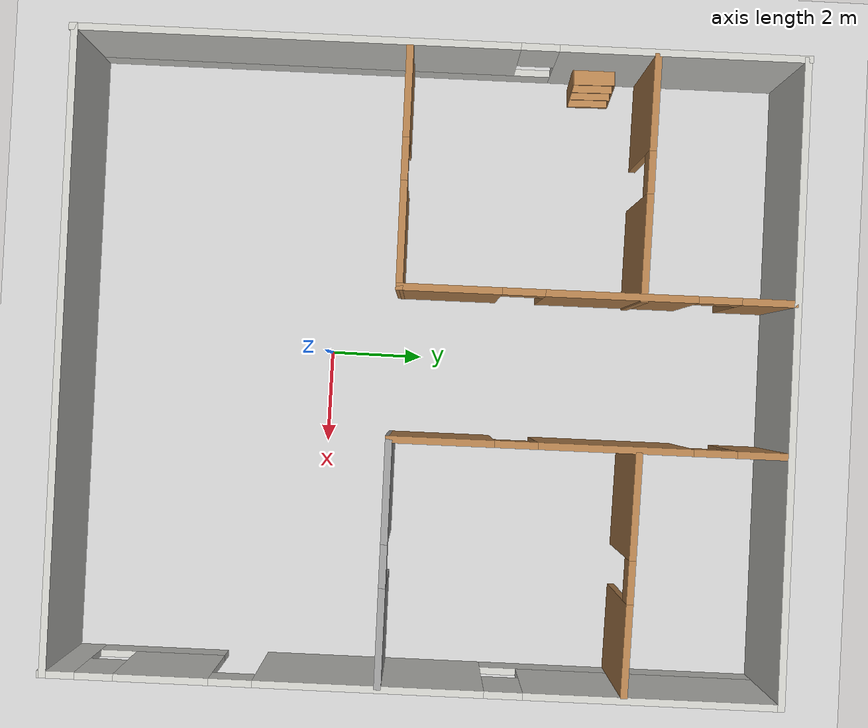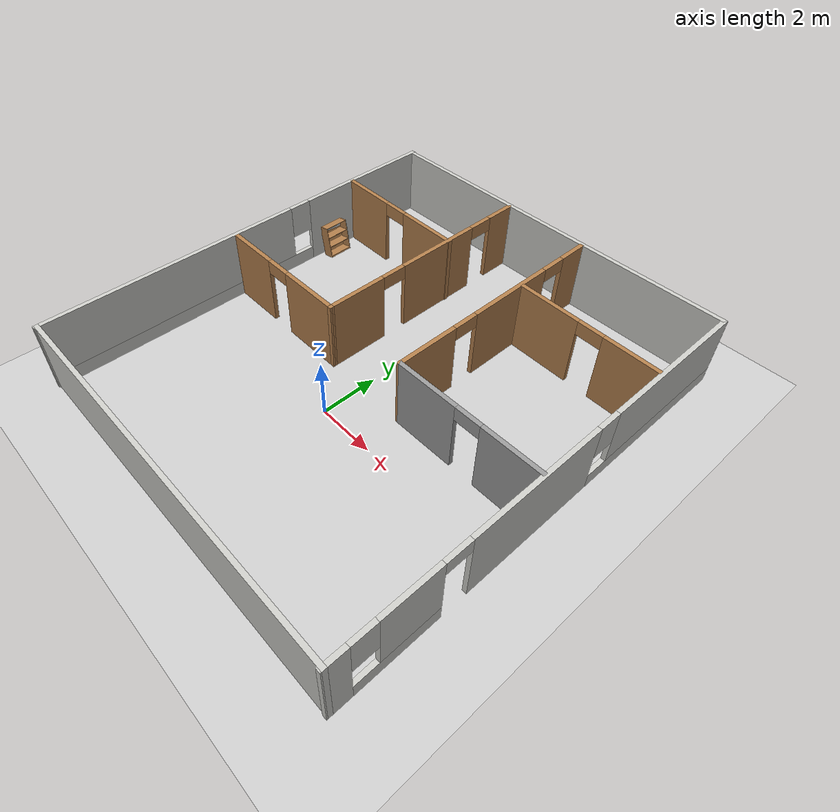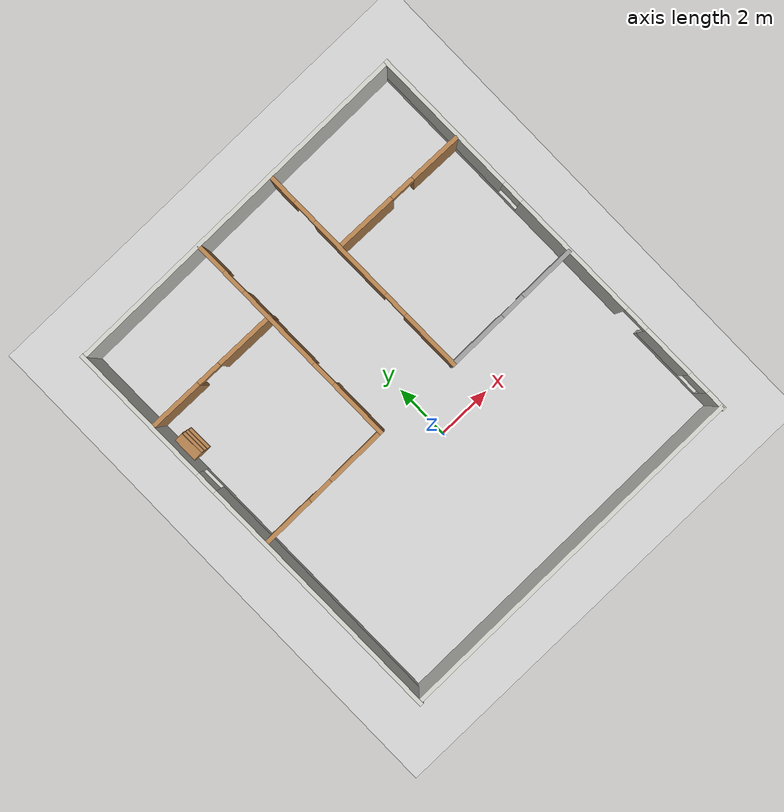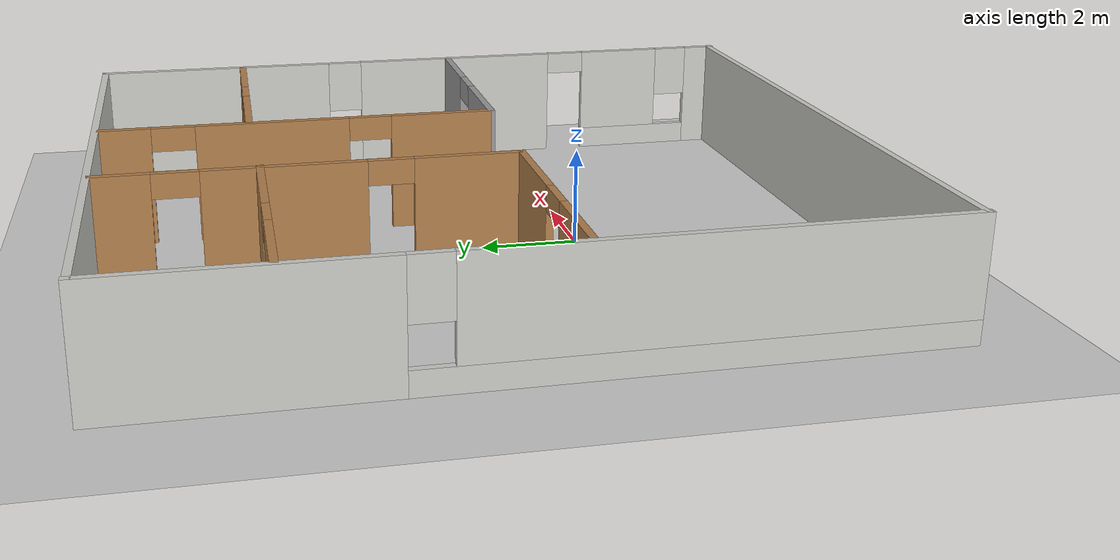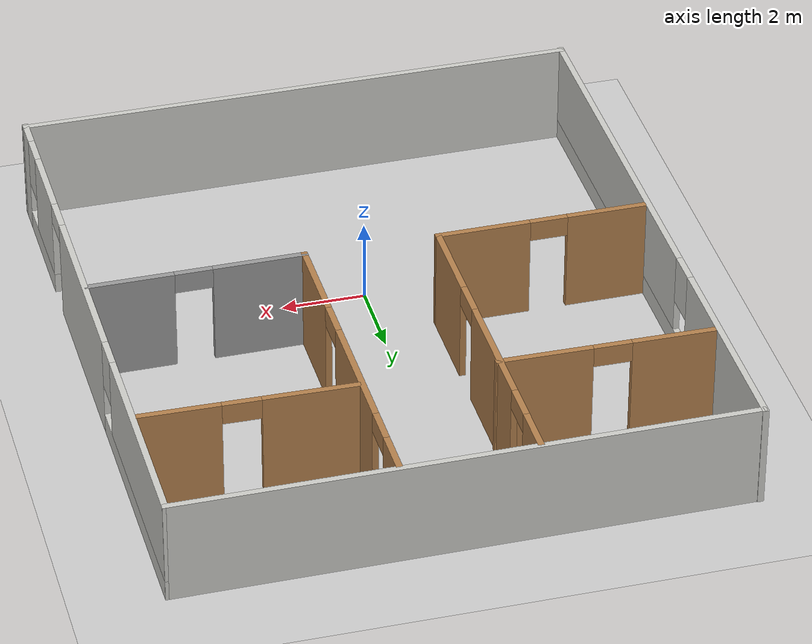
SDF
<sdf version="1.7">
 <world name="default">
  <light name="sun" type="directional">
   <pose>1.45371 -6.88803 10 0 -0 0</pose>
   <diffuse>0.8 0.8 0.8 1</diffuse>
   <specular>0.2 0.2 0.2 1</specular>
   <attenuation>
    <range>1000</range>
    <constant>0.9</constant>
    <linear>0.01</linear>
    <quadratic>0.001</quadratic>
   </attenuation>
   <direction>-0.5 0.1 -0.9</direction>
   <spot><inner_angle>0</inner_angle><outer_angle>0</outer_angle><falloff>0</falloff></spot>
  </light>
  <model name="ground_plane">
   <static>1</static>
   <link name="link">
    <collision name="collision">
     <geometry><plane><normal>0 0 1</normal><size>100 100</size></plane></geometry>
     <surface><friction><ode><mu>100</mu><mu2>50</mu2></ode></friction></surface>
    </collision>
    <visual name="visual">
     <cast_shadows>0</cast_shadows>
     <geometry><plane><normal>0 0 1</normal><size>100 100</size></plane></geometry>
     <material>
      <script><uri>file://media/materials/scripts/gazebo.material</uri><name>Gazebo/Grey</name></script>
     </material>
    </visual>
   </link>
  </model>
  <gravity>0 0 -9.8</gravity>
  <magnetic_field>6e-06 2.3e-05 -4.2e-05</magnetic_field>
  <atmosphere type="adiabatic"/>
  <physics type="ode">
   <max_step_size>0.001</max_step_size>
   <real_time_factor>1</real_time_factor>
   <real_time_update_rate>1000</real_time_update_rate>
  </physics>
  <scene><ambient>0.4 0.4 0.4 1</ambient><background>0.7 0.7 0.7 1</background><shadows>1</shadows></scene>
  <audio><device>default</device></audio>
  <spherical_coordinates>
   <surface_model>EARTH_WGS84</surface_model>
   <latitude_deg>0</latitude_deg>
   <longitude_deg>0</longitude_deg>
   <elevation>0</elevation>
   <heading_deg>0</heading_deg>
  </spherical_coordinates>
  <model name="my_house">
   <pose>0.22719 2.12089 0 0 -0 0</pose>
   <link name="Wall_10">
    <pose>-1.63441 3.47261 0 0 -0 -1.5643</pose>
    <visual name="Wall_10_Visual_0">
     <pose>-3.59148 0 1.25 0 -0 0</pose>
     <geometry><box><size>1.16029 0.15 2.5</size></box></geometry>
     <material>
      <script><uri>file://media/materials/scripts/gazebo.material</uri><name>Gazebo/Wood</name></script>
      <ambient>1 1 1 1</ambient>
     </material>
     <meta><layer>0</layer></meta>
    </visual>
    <collision name="Wall_10_Collision_0">
     <geometry><box><size>1.16029 0.15 2.5</size></box></geometry>
     <pose>-3.59148 0 1.25 0 -0 0</pose>
    </collision>
    <visual name="Wall_10_Visual_1">
     <pose>-0.525884 0 1.25 0 -0 0</pose>
     <geometry><box><size>3.1709 0.15 2.5</size></box></geometry>
     <material>
      <script><uri>file://media/materials/scripts/gazebo.material</uri><name>Gazebo/Wood</name></script>
      <ambient>1 1 1 1</ambient>
     </material>
     <meta><layer>0</layer></meta>
    </visual>
    <collision name="Wall_10_Collision_1">
     <geometry><box><size>3.1709 0.15 2.5</size></box></geometry>
     <pose>-0.525884 0 1.25 0 -0 0</pose>
    </collision>
    <visual name="Wall_10_Visual_2">
     <pose>3.0656 0 1.25 0 -0 0</pose>
     <geometry><box><size>2.21206 0.15 2.5</size></box></geometry>
     <material>
      <script><uri>file://media/materials/scripts/gazebo.material</uri><name>Gazebo/Wood</name></script>
      <ambient>1 1 1 1</ambient>
     </material>
     <meta><layer>0</layer></meta>
    </visual>
    <collision name="Wall_10_Collision_2">
     <geometry><box><size>2.21206 0.15 2.5</size></box></geometry>
     <pose>3.0656 0 1.25 0 -0 0</pose>
    </collision>
    <visual name="Wall_10_Visual_3">
     <pose>-2.56134 0 2.25 0 -0 0</pose>
     <geometry><box><size>0.9 0.15 0.5</size></box></geometry>
     <material>
      <script><uri>file://media/materials/scripts/gazebo.material</uri><name>Gazebo/Wood</name></script>
      <ambient>1 1 1 1</ambient>
     </material>
     <meta><layer>0</layer></meta>
    </visual>
    <collision name="Wall_10_Collision_3">
     <geometry><box><size>0.9 0.15 0.5</size></box></geometry>
     <pose>-2.56134 0 2.25 0 -0 0</pose>
    </collision>
    <visual name="Wall_10_Visual_4">
     <pose>1.50957 0 2.25 0 -0 0</pose>
     <geometry><box><size>0.9 0.15 0.5</size></box></geometry>
     <material>
      <script><uri>file://media/materials/scripts/gazebo.material</uri><name>Gazebo/Wood</name></script>
      <ambient>1 1 1 1</ambient>
     </material>
     <meta><layer>0</layer></meta>
    </visual>
    <collision name="Wall_10_Collision_4">
     <geometry><box><size>0.9 0.15 0.5</size></box></geometry>
     <pose>1.50957 0 2.25 0 -0 0</pose>
    </collision>
   </link>
   <link name="Wall_11">
    <pose>-4.08162 -0.637126 0 0 -0 -3.13622</pose>
    <visual name="Wall_11_Visual_0">
     <pose>-1.40921 0 1.25 0 -0 0</pose>
     <geometry><box><size>2.2793 0.15 2.5</size></box></geometry>
     <material>
      <script><uri>file://media/materials/scripts/gazebo.material</uri><name>Gazebo/Wood</name></script>
      <ambient>1 1 1 1</ambient>
     </material>
     <meta><layer>0</layer></meta>
    </visual>
    <collision name="Wall_11_Collision_0">
     <geometry><box><size>2.2793 0.15 2.5</size></box></geometry>
     <pose>-1.40921 0 1.25 0 -0 0</pose>
    </collision>
    <visual name="Wall_11_Visual_1">
     <pose>1.58965 0 1.25 0 -0 0</pose>
     <geometry><box><size>1.91841 0.15 2.5</size></box></geometry>
     <material>
      <script><uri>file://media/materials/scripts/gazebo.material</uri><name>Gazebo/Wood</name></script>
      <ambient>1 1 1 1</ambient>
     </material>
     <meta><layer>0</layer></meta>
    </visual>
    <collision name="Wall_11_Collision_1">
     <geometry><box><size>1.91841 0.15 2.5</size></box></geometry>
     <pose>1.58965 0 1.25 0 -0 0</pose>
    </collision>
    <visual name="Wall_11_Visual_2">
     <pose>0.180445 0 2.25 0 -0 0</pose>
     <geometry><box><size>0.9 0.15 0.5</size></box></geometry>
     <material>
      <script><uri>file://media/materials/scripts/gazebo.material</uri><name>Gazebo/Wood</name></script>
      <ambient>1 1 1 1</ambient>
     </material>
     <meta><layer>0</layer></meta>
    </visual>
    <collision name="Wall_11_Collision_2">
     <geometry><box><size>0.9 0.15 0.5</size></box></geometry>
     <pose>0.180445 0 2.25 0 -0 0</pose>
    </collision>
   </link>
   <link name="Wall_13">
    <pose>1.53102 3.4327 0 0 -0 -1.56432</pose>
    <visual name="Wall_13_Visual_0">
     <pose>-3.64174 0 1.25 0 -0 0</pose>
     <geometry><box><size>1.08615 0.15 2.5</size></box></geometry>
     <material>
      <script><uri>file://media/materials/scripts/gazebo.material</uri><name>Gazebo/Wood</name></script>
      <ambient>1 1 1 1</ambient>
     </material>
     <meta><layer>0</layer></meta>
    </visual>
    <collision name="Wall_13_Collision_0">
     <geometry><box><size>1.08615 0.15 2.5</size></box></geometry>
     <pose>-3.64174 0 1.25 0 -0 0</pose>
    </collision>
    <visual name="Wall_13_Visual_1">
     <pose>-0.589791 0 1.25 0 -0 0</pose>
     <geometry><box><size>3.21776 0.15 2.5</size></box></geometry>
     <material>
      <script><uri>file://media/materials/scripts/gazebo.material</uri><name>Gazebo/Wood</name></script>
      <ambient>1 1 1 1</ambient>
     </material>
     <meta><layer>0</layer></meta>
    </visual>
    <collision name="Wall_13_Collision_1">
     <geometry><box><size>3.21776 0.15 2.5</size></box></geometry>
     <pose>-0.589791 0 1.25 0 -0 0</pose>
    </collision>
    <visual name="Wall_13_Visual_2">
     <pose>3.05195 0 1.25 0 -0 0</pose>
     <geometry><box><size>2.26573 0.15 2.5</size></box></geometry>
     <material>
      <script><uri>file://media/materials/scripts/gazebo.material</uri><name>Gazebo/Wood</name></script>
      <ambient>1 1 1 1</ambient>
     </material>
     <meta><layer>0</layer></meta>
    </visual>
    <collision name="Wall_13_Collision_2">
     <geometry><box><size>2.26573 0.15 2.5</size></box></geometry>
     <pose>3.05195 0 1.25 0 -0 0</pose>
    </collision>
    <visual name="Wall_13_Visual_3">
     <pose>-2.64867 0 2.25 0 -0 0</pose>
     <geometry><box><size>0.9 0.15 0.5</size></box></geometry>
     <material>
      <script><uri>file://media/materials/scripts/gazebo.material</uri><name>Gazebo/Wood</name></script>
      <ambient>1 1 1 1</ambient>
     </material>
     <meta><layer>0</layer></meta>
    </visual>
    <collision name="Wall_13_Collision_3">
     <geometry><box><size>0.9 0.15 0.5</size></box></geometry>
     <pose>-2.64867 0 2.25 0 -0 0</pose>
    </collision>
    <visual name="Wall_13_Visual_4">
     <pose>1.46909 0 2.25 0 -0 0</pose>
     <geometry><box><size>0.9 0.15 0.5</size></box></geometry>
     <material>
      <script><uri>file://media/materials/scripts/gazebo.material</uri><name>Gazebo/Wood</name></script>
      <ambient>1 1 1 1</ambient>
     </material>
     <meta><layer>0</layer></meta>
    </visual>
    <collision name="Wall_13_Collision_4">
     <geometry><box><size>0.9 0.15 0.5</size></box></geometry>
     <pose>1.46909 0 2.25 0 -0 0</pose>
    </collision>
   </link>
   <link name="Wall_14">
    <pose>4.09794 -0.663726 0 0 -0 0.005236</pose>
    <visual name="Wall_14_Visual_0">
     <pose>-1.49146 0 1.25 0 -0 0</pose>
     <geometry><box><size>2.24778 0.15 2.5</size></box></geometry>
     <material>
      <script><uri>file://media/materials/scripts/gazebo.material</uri><name>Gazebo/Grey</name></script>
      <ambient>1 1 1 1</ambient>
     </material>
     <meta><layer>0</layer></meta>
    </visual>
    <collision name="Wall_14_Collision_0">
     <geometry><box><size>2.24778 0.15 2.5</size></box></geometry>
     <pose>-1.49146 0 1.25 0 -0 0</pose>
    </collision>
    <visual name="Wall_14_Visual_1">
     <pose>1.57389 0 1.25 0 -0 0</pose>
     <geometry><box><size>2.08292 0.15 2.5</size></box></geometry>
     <material>
      <script><uri>file://media/materials/scripts/gazebo.material</uri><name>Gazebo/Grey</name></script>
      <ambient>1 1 1 1</ambient>
     </material>
     <meta><layer>0</layer></meta>
    </visual>
    <collision name="Wall_14_Collision_1">
     <geometry><box><size>2.08292 0.15 2.5</size></box></geometry>
     <pose>1.57389 0 1.25 0 -0 0</pose>
    </collision>
    <visual name="Wall_14_Visual_2">
     <pose>0.08243 0 2.25 0 -0 0</pose>
     <geometry><box><size>0.9 0.15 0.5</size></box></geometry>
     <material>
      <script><uri>file://media/materials/scripts/gazebo.material</uri><name>Gazebo/Grey</name></script>
      <ambient>1 1 1 1</ambient>
     </material>
     <meta><layer>0</layer></meta>
    </visual>
    <collision name="Wall_14_Collision_2">
     <geometry><box><size>0.9 0.15 0.5</size></box></geometry>
     <pose>0.08243 0 2.25 0 -0 0</pose>
    </collision>
   </link>
   <link name="Wall_16">
    <pose>4.09794 4.47011 0 0 -0 -0.016215</pose>
    <visual name="Wall_16_Visual_0">
     <pose>-1.4168 0 1.25 0 -0 0</pose>
     <geometry><box><size>2.23809 0.15 2.5</size></box></geometry>
     <material>
      <script><uri>file://media/materials/scripts/gazebo.material</uri><name>Gazebo/Wood</name></script>
      <ambient>1 1 1 1</ambient>
     </material>
     <meta><layer>0</layer></meta>
    </visual>
    <collision name="Wall_16_Collision_0">
     <geometry><box><size>2.23809 0.15 2.5</size></box></geometry>
     <pose>-1.4168 0 1.25 0 -0 0</pose>
    </collision>
    <visual name="Wall_16_Visual_1">
     <pose>1.56905 0 1.25 0 -0 0</pose>
     <geometry><box><size>1.93359 0.15 2.5</size></box></geometry>
     <material>
      <script><uri>file://media/materials/scripts/gazebo.material</uri><name>Gazebo/Wood</name></script>
      <ambient>1 1 1 1</ambient>
     </material>
     <meta><layer>0</layer></meta>
    </visual>
    <collision name="Wall_16_Collision_1">
     <geometry><box><size>1.93359 0.15 2.5</size></box></geometry>
     <pose>1.56905 0 1.25 0 -0 0</pose>
    </collision>
    <visual name="Wall_16_Visual_2">
     <pose>0.152248 0 2.25 0 -0 0</pose>
     <geometry><box><size>0.9 0.15 0.5</size></box></geometry>
     <material>
      <script><uri>file://media/materials/scripts/gazebo.material</uri><name>Gazebo/Wood</name></script>
      <ambient>1 1 1 1</ambient>
     </material>
     <meta><layer>0</layer></meta>
    </visual>
    <collision name="Wall_16_Collision_2">
     <geometry><box><size>0.9 0.15 0.5</size></box></geometry>
     <pose>0.152248 0 2.25 0 -0 0</pose>
    </collision>
   </link>
   <link name="Wall_2">
    <pose>-6.70327 -0.016044 0 0 -0 -1.56539</pose>
    <visual name="Wall_2_Visual_0">
     <pose>-5.10044 0 1.25 0 -0 0</pose>
     <geometry><box><size>5.2681 0.15 2.5</size></box></geometry>
     <material>
      <script><uri>file://media/materials/scripts/gazebo.material</uri><name>Gazebo/CeilingTiled</name></script>
      <ambient>1 1 1 1</ambient>
     </material>
     <meta><layer>0</layer></meta>
    </visual>
    <collision name="Wall_2_Collision_0">
     <geometry><box><size>5.2681 0.15 2.5</size></box></geometry>
     <pose>-5.10044 0 1.25 0 -0 0</pose>
    </collision>
    <visual name="Wall_2_Visual_1">
     <pose>2.63405 0 0.25 0 -0 0</pose>
     <geometry><box><size>10.2009 0.15 0.5</size></box></geometry>
     <material>
      <script><uri>file://media/materials/scripts/gazebo.material</uri><name>Gazebo/CeilingTiled</name></script>
      <ambient>1 1 1 1</ambient>
     </material>
     <meta><layer>0</layer></meta>
    </visual>
    <collision name="Wall_2_Collision_1">
     <geometry><box><size>10.2009 0.15 0.5</size></box></geometry>
     <pose>2.63405 0 0.25 0 -0 0</pose>
    </collision>
    <visual name="Wall_2_Visual_2">
     <pose>3.03405 0 1.5 0 -0 0</pose>
     <geometry><box><size>9.40088 0.15 2</size></box></geometry>
     <material>
      <script><uri>file://media/materials/scripts/gazebo.material</uri><name>Gazebo/CeilingTiled</name></script>
      <ambient>1 1 1 1</ambient>
     </material>
     <meta><layer>0</layer></meta>
    </visual>
    <collision name="Wall_2_Collision_2">
     <geometry><box><size>9.40088 0.15 2</size></box></geometry>
     <pose>3.03405 0 1.5 0 -0 0</pose>
    </collision>
    <visual name="Wall_2_Visual_3">
     <pose>-2.06639 0 1.9 0 -0 0</pose>
     <geometry><box><size>0.8 0.15 1.2</size></box></geometry>
     <material>
      <script><uri>file://media/materials/scripts/gazebo.material</uri><name>Gazebo/CeilingTiled</name></script>
      <ambient>1 1 1 1</ambient>
     </material>
     <meta><layer>0</layer></meta>
    </visual>
    <collision name="Wall_2_Collision_3">
     <geometry><box><size>0.8 0.15 1.2</size></box></geometry>
     <pose>-2.06639 0 1.9 0 -0 0</pose>
    </collision>
   </link>
   <link name="Wall_3">
    <collision name="Wall_3_Collision">
     <geometry><box><size>13.5567 0.15 2.5</size></box></geometry>
     <pose>0 0 1.25 0 -0 0</pose>
    </collision>
    <visual name="Wall_3_Visual">
     <pose>0 0 1.25 0 -0 0</pose>
     <geometry><box><size>13.5567 0.15 2.5</size></box></geometry>
     <material>
      <script><uri>file://media/materials/scripts/gazebo.material</uri><name>Gazebo/CeilingTiled</name></script>
      <ambient>1 1 1 1</ambient>
     </material>
     <meta><layer>0</layer></meta>
    </visual>
    <pose>0.041408 -7.59507 0 0 -0 0.005952</pose>
   </link>
   <link name="Wall_4">
    <pose>6.70476 0.039907 0 0 -0 1.57602</pose>
    <visual name="Wall_4_Visual_0">
     <pose>-7.32414 0 1.25 0 -0 0</pose>
     <geometry><box><size>0.772993 0.15 2.5</size></box></geometry>
     <material>
      <script><uri>file://media/materials/scripts/gazebo.material</uri><name>Gazebo/CeilingTiled</name></script>
      <ambient>1 1 1 1</ambient>
     </material>
     <meta><layer>0</layer></meta>
    </visual>
    <collision name="Wall_4_Collision_0">
     <geometry><box><size>0.772993 0.15 2.5</size></box></geometry>
     <pose>-7.32414 0 1.25 0 -0 0</pose>
    </collision>
    <visual name="Wall_4_Visual_1">
     <pose>-0.884574 0 1.25 0 -0 0</pose>
     <geometry><box><size>4.77761 0.15 2.5</size></box></geometry>
     <material>
      <script><uri>file://media/materials/scripts/gazebo.material</uri><name>Gazebo/CeilingTiled</name></script>
      <ambient>1 1 1 1</ambient>
     </material>
     <meta><layer>0</layer></meta>
    </visual>
    <collision name="Wall_4_Collision_1">
     <geometry><box><size>4.77761 0.15 2.5</size></box></geometry>
     <pose>-0.884574 0 1.25 0 -0 0</pose>
    </collision>
    <visual name="Wall_4_Visual_2">
     <pose>-5.55551 0 0.25 0 -0 0</pose>
     <geometry><box><size>2.76426 0.15 0.5</size></box></geometry>
     <material>
      <script><uri>file://media/materials/scripts/gazebo.material</uri><name>Gazebo/CeilingTiled</name></script>
      <ambient>1 1 1 1</ambient>
     </material>
     <meta><layer>0</layer></meta>
    </visual>
    <collision name="Wall_4_Collision_2">
     <geometry><box><size>2.76426 0.15 0.5</size></box></geometry>
     <pose>-5.55551 0 0.25 0 -0 0</pose>
    </collision>
    <visual name="Wall_4_Visual_3">
     <pose>4.60743 0 0.25 0 -0 0</pose>
     <geometry><box><size>6.2064 0.15 0.5</size></box></geometry>
     <material>
      <script><uri>file://media/materials/scripts/gazebo.material</uri><name>Gazebo/CeilingTiled</name></script>
      <ambient>1 1 1 1</ambient>
     </material>
     <meta><layer>0</layer></meta>
    </visual>
    <collision name="Wall_4_Collision_3">
     <geometry><box><size>6.2064 0.15 0.5</size></box></geometry>
     <pose>4.60743 0 0.25 0 -0 0</pose>
    </collision>
    <visual name="Wall_4_Visual_4">
     <pose>-5.15551 0 1.5 0 -0 0</pose>
     <geometry><box><size>1.96426 0.15 2</size></box></geometry>
     <material>
      <script><uri>file://media/materials/scripts/gazebo.material</uri><name>Gazebo/CeilingTiled</name></script>
      <ambient>1 1 1 1</ambient>
     </material>
     <meta><layer>0</layer></meta>
    </visual>
    <collision name="Wall_4_Collision_4">
     <geometry><box><size>1.96426 0.15 2</size></box></geometry>
     <pose>-5.15551 0 1.5 0 -0 0</pose>
    </collision>
    <visual name="Wall_4_Visual_5">
     <pose>-5.15551 0 1.5 0 -0 0</pose>
     <geometry><box><size>1.96426 0.15 2</size></box></geometry>
     <material>
      <script><uri>file://media/materials/scripts/gazebo.material</uri><name>Gazebo/CeilingTiled</name></script>
      <ambient>1 1 1 1</ambient>
     </material>
     <meta><layer>0</layer></meta>
    </visual>
    <collision name="Wall_4_Collision_5">
     <geometry><box><size>1.96426 0.15 2</size></box></geometry>
     <pose>-5.15551 0 1.5 0 -0 0</pose>
    </collision>
    <visual name="Wall_4_Visual_6">
     <pose>5.00743 0 1.5 0 -0 0</pose>
     <geometry><box><size>5.4064 0.15 2</size></box></geometry>
     <material>
      <script><uri>file://media/materials/scripts/gazebo.material</uri><name>Gazebo/CeilingTiled</name></script>
      <ambient>1 1 1 1</ambient>
     </material>
     <meta><layer>0</layer></meta>
    </visual>
    <collision name="Wall_4_Collision_6">
     <geometry><box><size>5.4064 0.15 2</size></box></geometry>
     <pose>5.00743 0 1.5 0 -0 0</pose>
    </collision>
    <visual name="Wall_4_Visual_7">
     <pose>-6.53764 0 1.9 0 -0 0</pose>
     <geometry><box><size>0.8 0.15 1.2</size></box></geometry>
     <material>
      <script><uri>file://media/materials/scripts/gazebo.material</uri><name>Gazebo/CeilingTiled</name></script>
      <ambient>1 1 1 1</ambient>
     </material>
     <meta><layer>0</layer></meta>
    </visual>
    <collision name="Wall_4_Collision_7">
     <geometry><box><size>0.8 0.15 1.2</size></box></geometry>
     <pose>-6.53764 0 1.9 0 -0 0</pose>
    </collision>
    <visual name="Wall_4_Visual_8">
     <pose>1.90423 0 1.9 0 -0 0</pose>
     <geometry><box><size>0.8 0.15 1.2</size></box></geometry>
     <material>
      <script><uri>file://media/materials/scripts/gazebo.material</uri><name>Gazebo/CeilingTiled</name></script>
      <ambient>1 1 1 1</ambient>
     </material>
     <meta><layer>0</layer></meta>
    </visual>
    <collision name="Wall_4_Collision_8">
     <geometry><box><size>0.8 0.15 1.2</size></box></geometry>
     <pose>1.90423 0 1.9 0 -0 0</pose>
    </collision>
    <visual name="Wall_4_Visual_9">
     <pose>-3.72338 0 2.25 0 -0 0</pose>
     <geometry><box><size>0.9 0.15 0.5</size></box></geometry>
     <material>
      <script><uri>file://media/materials/scripts/gazebo.material</uri><name>Gazebo/CeilingTiled</name></script>
      <ambient>1 1 1 1</ambient>
     </material>
     <meta><layer>0</layer></meta>
    </visual>
    <collision name="Wall_4_Collision_9">
     <geometry><box><size>0.9 0.15 0.5</size></box></geometry>
     <pose>-3.72338 0 2.25 0 -0 0</pose>
    </collision>
    <visual name="Wall_4_Visual_10">
     <pose>-3.72338 0 2.25 0 -0 0</pose>
     <geometry><box><size>0.9 0.15 0.5</size></box></geometry>
     <material>
      <script><uri>file://media/materials/scripts/gazebo.material</uri><name>Gazebo/CeilingTiled</name></script>
      <ambient>1 1 1 1</ambient>
     </material>
     <meta><layer>0</layer></meta>
    </visual>
    <collision name="Wall_4_Collision_10">
     <geometry><box><size>0.9 0.15 0.5</size></box></geometry>
     <pose>-3.72338 0 2.25 0 -0 0</pose>
    </collision>
   </link>
   <link name="Wall_5">
    <collision name="Wall_5_Collision">
     <geometry><box><size>13.5299 0.15 2.5</size></box></geometry>
     <pose>0 0 1.25 0 -0 0</pose>
    </collision>
    <visual name="Wall_5_Visual">
     <pose>0 0 1.25 0 -0 0</pose>
     <geometry><box><size>13.5299 0.15 2.5</size></box></geometry>
     <material>
      <script><uri>file://media/materials/scripts/gazebo.material</uri><name>Gazebo/CeilingTiled</name></script>
      <ambient>1 1 1 1</ambient>
     </material>
     <meta><layer>0</layer></meta>
    </visual>
    <pose>-0.025093 7.64884 0 0 -0 -3.13762</pose>
   </link>
   <link name="Wall_7">
    <pose>-4.12152 4.48341 0 0 -0 -0.010582</pose>
    <visual name="Wall_7_Visual_0">
     <pose>-1.57829 0 1.25 0 -0 0</pose>
     <geometry><box><size>2.02114 0.15 2.5</size></box></geometry>
     <material>
      <script><uri>file://media/materials/scripts/gazebo.material</uri><name>Gazebo/Wood</name></script>
      <ambient>1 1 1 1</ambient>
     </material>
     <meta><layer>0</layer></meta>
    </visual>
    <collision name="Wall_7_Collision_0">
     <geometry><box><size>2.02114 0.15 2.5</size></box></geometry>
     <pose>-1.57829 0 1.25 0 -0 0</pose>
    </collision>
    <visual name="Wall_7_Visual_1">
     <pose>1.46057 0 1.25 0 -0 0</pose>
     <geometry><box><size>2.25658 0.15 2.5</size></box></geometry>
     <material>
      <script><uri>file://media/materials/scripts/gazebo.material</uri><name>Gazebo/Wood</name></script>
      <ambient>1 1 1 1</ambient>
     </material>
     <meta><layer>0</layer></meta>
    </visual>
    <collision name="Wall_7_Collision_1">
     <geometry><box><size>2.25658 0.15 2.5</size></box></geometry>
     <pose>1.46057 0 1.25 0 -0 0</pose>
    </collision>
    <visual name="Wall_7_Visual_2">
     <pose>-0.117724 0 2.25 0 -0 0</pose>
     <geometry><box><size>0.9 0.15 0.5</size></box></geometry>
     <material>
      <script><uri>file://media/materials/scripts/gazebo.material</uri><name>Gazebo/Wood</name></script>
      <ambient>1 1 1 1</ambient>
     </material>
     <meta><layer>0</layer></meta>
    </visual>
    <collision name="Wall_7_Collision_2">
     <geometry><box><size>0.9 0.15 0.5</size></box></geometry>
     <pose>-0.117724 0 2.25 0 -0 0</pose>
    </collision>
   </link>
   <static>1</static>
  </model>
  <model name="bookshelf">
   <static>1</static>
   <link name="link">
    <inertial><mass>1</mass></inertial>
    <collision name="back">
     <pose>0 0.005 0.6 0 -0 0</pose>
     <geometry><box><size>0.9 0.01 1.2</size></box></geometry>
    </collision>
    <visual name="visual1">
     <pose>0 0.005 0.6 0 -0 0</pose>
     <geometry><box><size>0.9 0.01 1.2</size></box></geometry>
     <material>
      <script><uri>file://media/materials/scripts/gazebo.material</uri><name>Gazebo/Wood</name></script>
     </material>
    </visual>
    <collision name="left_side">
     <pose>0.45 -0.195 0.6 0 -0 0</pose>
     <geometry><box><size>0.02 0.4 1.2</size></box></geometry>
    </collision>
    <visual name="visual2">
     <pose>0.45 -0.195 0.6 0 -0 0</pose>
     <geometry><box><size>0.02 0.4 1.2</size></box></geometry>
     <material>
      <script><uri>file://media/materials/scripts/gazebo.material</uri><name>Gazebo/Wood</name></script>
     </material>
    </visual>
    <collision name="right_side">
     <pose>-0.45 -0.195 0.6 0 -0 0</pose>
     <geometry><box><size>0.02 0.4 1.2</size></box></geometry>
    </collision>
    <visual name="visual3">
     <pose>-0.45 -0.195 0.6 0 -0 0</pose>
     <geometry><box><size>0.02 0.4 1.2</size></box></geometry>
     <material>
      <script><uri>file://media/materials/scripts/gazebo.material</uri><name>Gazebo/Wood</name></script>
     </material>
    </visual>
    <collision name="bottom">
     <pose>0 -0.195 0.03 0 -0 0</pose>
     <geometry><box><size>0.88 0.4 0.06</size></box></geometry>
    </collision>
    <visual name="visual4">
     <pose>0 -0.195 0.03 0 -0 0</pose>
     <geometry><box><size>0.88 0.4 0.06</size></box></geometry>
     <material>
      <script><uri>file://media/materials/scripts/gazebo.material</uri><name>Gazebo/Wood</name></script>
     </material>
    </visual>
    <collision name="top">
     <pose>0 -0.195 1.19 0 -0 0</pose>
     <geometry><box><size>0.88 0.4 0.02</size></box></geometry>
    </collision>
    <visual name="visual5">
     <pose>0 -0.195 1.19 0 -0 0</pose>
     <geometry><box><size>0.88 0.4 0.02</size></box></geometry>
     <material>
      <script><uri>file://media/materials/scripts/gazebo.material</uri><name>Gazebo/Wood</name></script>
     </material>
    </visual>
    <collision name="low_shelf">
     <pose>0 -0.195 0.43 0 -0 0</pose>
     <geometry><box><size>0.88 0.4 0.02</size></box></geometry>
    </collision>
    <visual name="visual6">
     <pose>0 -0.195 0.43 0 -0 0</pose>
     <geometry><box><size>0.88 0.4 0.02</size></box></geometry>
     <material>
      <script><uri>file://media/materials/scripts/gazebo.material</uri><name>Gazebo/Wood</name></script>
     </material>
    </visual>
    <collision name="high_shelf">
     <pose>0 -0.195 0.8 0 -0 0</pose>
     <geometry><box><size>0.88 0.4 0.02</size></box></geometry>
    </collision>
    <visual name="visual7">
     <pose>0 -0.195 0.8 0 -0 0</pose>
     <geometry><box><size>0.88 0.4 0.02</size></box></geometry>
     <material>
      <script><uri>file://media/materials/scripts/gazebo.material</uri><name>Gazebo/Wood</name></script>
     </material>
    </visual>
   </link>
   <pose>-6.26012 5.48802 -0.007908 -0.180784 -0.003988 1.59151</pose>
  </model>
 </world>
</sdf>
